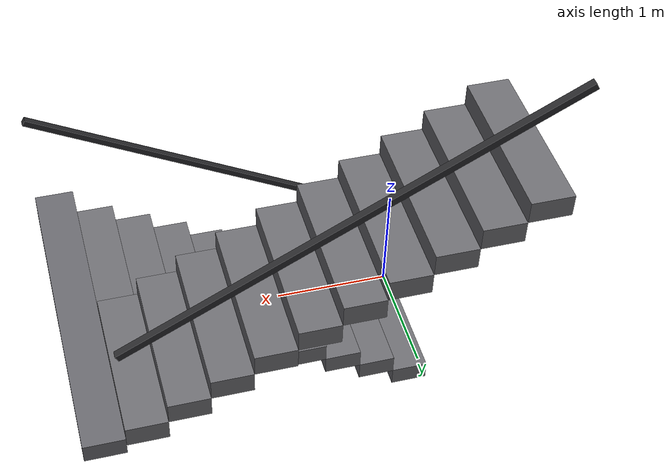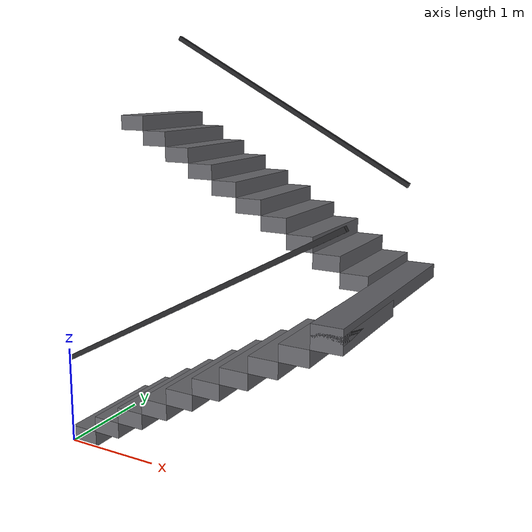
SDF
<?xml version="1.0" ?>
<sdf version="1.6">
  <model name="staircase">
    <static>true</static>

    <!-- ===================== FLIGHT A (steps 1..10, +X, Y 0..1.2) ===================== -->
    <link name="flight_a">
      <!-- Step template repeated; tread 0.30, rise 0.165, top of step n at n*0.165 -->
      <!-- Step 1 -->
      <collision name="a1_col"><pose>0.15 0.6 0.0825 0 0 0</pose><geometry><box><size>0.30 1.2 0.165</size></box></geometry></collision>
      <visual name="a1_vis"><pose>0.15 0.6 0.0825 0 0 0</pose><geometry><box><size>0.30 1.2 0.165</size></box></geometry>
        <material><ambient>0.30 0.30 0.32 1</ambient><diffuse>0.42 0.42 0.44 1</diffuse><specular>0.30 0.30 0.32 1</specular></material></visual>
      <!-- Step 2 -->
      <collision name="a2_col"><pose>0.45 0.6 0.2475 0 0 0</pose><geometry><box><size>0.30 1.2 0.165</size></box></geometry></collision>
      <visual name="a2_vis"><pose>0.45 0.6 0.2475 0 0 0</pose><geometry><box><size>0.30 1.2 0.165</size></box></geometry>
        <material><ambient>0.30 0.30 0.32 1</ambient><diffuse>0.42 0.42 0.44 1</diffuse><specular>0.30 0.30 0.32 1</specular></material></visual>
      <!-- Step 3 -->
      <collision name="a3_col"><pose>0.75 0.6 0.4125 0 0 0</pose><geometry><box><size>0.30 1.2 0.165</size></box></geometry></collision>
      <visual name="a3_vis"><pose>0.75 0.6 0.4125 0 0 0</pose><geometry><box><size>0.30 1.2 0.165</size></box></geometry>
        <material><ambient>0.30 0.30 0.32 1</ambient><diffuse>0.42 0.42 0.44 1</diffuse><specular>0.30 0.30 0.32 1</specular></material></visual>
      <!-- Step 4 -->
      <collision name="a4_col"><pose>1.05 0.6 0.5775 0 0 0</pose><geometry><box><size>0.30 1.2 0.165</size></box></geometry></collision>
      <visual name="a4_vis"><pose>1.05 0.6 0.5775 0 0 0</pose><geometry><box><size>0.30 1.2 0.165</size></box></geometry>
        <material><ambient>0.30 0.30 0.32 1</ambient><diffuse>0.42 0.42 0.44 1</diffuse><specular>0.30 0.30 0.32 1</specular></material></visual>
      <!-- Step 5 -->
      <collision name="a5_col"><pose>1.35 0.6 0.7425 0 0 0</pose><geometry><box><size>0.30 1.2 0.165</size></box></geometry></collision>
      <visual name="a5_vis"><pose>1.35 0.6 0.7425 0 0 0</pose><geometry><box><size>0.30 1.2 0.165</size></box></geometry>
        <material><ambient>0.30 0.30 0.32 1</ambient><diffuse>0.42 0.42 0.44 1</diffuse><specular>0.30 0.30 0.32 1</specular></material></visual>
      <!-- Step 6 -->
      <collision name="a6_col"><pose>1.65 0.6 0.9075 0 0 0</pose><geometry><box><size>0.30 1.2 0.165</size></box></geometry></collision>
      <visual name="a6_vis"><pose>1.65 0.6 0.9075 0 0 0</pose><geometry><box><size>0.30 1.2 0.165</size></box></geometry>
        <material><ambient>0.30 0.30 0.32 1</ambient><diffuse>0.42 0.42 0.44 1</diffuse><specular>0.30 0.30 0.32 1</specular></material></visual>
      <!-- Step 7 -->
      <collision name="a7_col"><pose>1.95 0.6 1.0725 0 0 0</pose><geometry><box><size>0.30 1.2 0.165</size></box></geometry></collision>
      <visual name="a7_vis"><pose>1.95 0.6 1.0725 0 0 0</pose><geometry><box><size>0.30 1.2 0.165</size></box></geometry>
        <material><ambient>0.30 0.30 0.32 1</ambient><diffuse>0.42 0.42 0.44 1</diffuse><specular>0.30 0.30 0.32 1</specular></material></visual>
      <!-- Step 8 -->
      <collision name="a8_col"><pose>2.25 0.6 1.2375 0 0 0</pose><geometry><box><size>0.30 1.2 0.165</size></box></geometry></collision>
      <visual name="a8_vis"><pose>2.25 0.6 1.2375 0 0 0</pose><geometry><box><size>0.30 1.2 0.165</size></box></geometry>
        <material><ambient>0.30 0.30 0.32 1</ambient><diffuse>0.42 0.42 0.44 1</diffuse><specular>0.30 0.30 0.32 1</specular></material></visual>
      <!-- Step 9 -->
      <collision name="a9_col"><pose>2.55 0.6 1.4025 0 0 0</pose><geometry><box><size>0.30 1.2 0.165</size></box></geometry></collision>
      <visual name="a9_vis"><pose>2.55 0.6 1.4025 0 0 0</pose><geometry><box><size>0.30 1.2 0.165</size></box></geometry>
        <material><ambient>0.30 0.30 0.32 1</ambient><diffuse>0.42 0.42 0.44 1</diffuse><specular>0.30 0.30 0.32 1</specular></material></visual>
      <!-- Step 10 -->
      <collision name="a10_col"><pose>2.85 0.6 1.5675 0 0 0</pose><geometry><box><size>0.30 1.2 0.165</size></box></geometry></collision>
      <visual name="a10_vis"><pose>2.85 0.6 1.5675 0 0 0</pose><geometry><box><size>0.30 1.2 0.165</size></box></geometry>
        <material><ambient>0.30 0.30 0.32 1</ambient><diffuse>0.42 0.42 0.44 1</diffuse><specular>0.30 0.30 0.32 1</specular></material></visual>
    </link>

    <!-- ===================== LANDING (at z=1.65, X 2.7..3.0, Y 0..2.5) ===================== -->
    <link name="landing">
      <collision name="landing_col"><pose>2.85 1.25 1.6425 0 0 0</pose><geometry><box><size>0.30 2.5 0.15</size></box></geometry></collision>
      <visual name="landing_vis"><pose>2.85 1.25 1.6425 0 0 0</pose><geometry><box><size>0.30 2.5 0.15</size></box></geometry>
        <material><ambient>0.28 0.28 0.30 1</ambient><diffuse>0.40 0.40 0.42 1</diffuse><specular>0.35 0.35 0.37 1</specular></material></visual>
    </link>

    <!-- ===================== FLIGHT B (steps 11..20, -X, Y 1.3..2.5) ===================== -->
    <link name="flight_b">
      <!-- Step 11 (first above landing 1.65) -->
      <collision name="b11_col"><pose>2.55 1.9 1.7325 0 0 0</pose><geometry><box><size>0.30 1.2 0.165</size></box></geometry></collision>
      <visual name="b11_vis"><pose>2.55 1.9 1.7325 0 0 0</pose><geometry><box><size>0.30 1.2 0.165</size></box></geometry>
        <material><ambient>0.30 0.30 0.32 1</ambient><diffuse>0.42 0.42 0.44 1</diffuse><specular>0.30 0.30 0.32 1</specular></material></visual>
      <collision name="b12_col"><pose>2.25 1.9 1.8975 0 0 0</pose><geometry><box><size>0.30 1.2 0.165</size></box></geometry></collision>
      <visual name="b12_vis"><pose>2.25 1.9 1.8975 0 0 0</pose><geometry><box><size>0.30 1.2 0.165</size></box></geometry>
        <material><ambient>0.30 0.30 0.32 1</ambient><diffuse>0.42 0.42 0.44 1</diffuse><specular>0.30 0.30 0.32 1</specular></material></visual>
      <collision name="b13_col"><pose>1.95 1.9 2.0625 0 0 0</pose><geometry><box><size>0.30 1.2 0.165</size></box></geometry></collision>
      <visual name="b13_vis"><pose>1.95 1.9 2.0625 0 0 0</pose><geometry><box><size>0.30 1.2 0.165</size></box></geometry>
        <material><ambient>0.30 0.30 0.32 1</ambient><diffuse>0.42 0.42 0.44 1</diffuse><specular>0.30 0.30 0.32 1</specular></material></visual>
      <collision name="b14_col"><pose>1.65 1.9 2.2275 0 0 0</pose><geometry><box><size>0.30 1.2 0.165</size></box></geometry></collision>
      <visual name="b14_vis"><pose>1.65 1.9 2.2275 0 0 0</pose><geometry><box><size>0.30 1.2 0.165</size></box></geometry>
        <material><ambient>0.30 0.30 0.32 1</ambient><diffuse>0.42 0.42 0.44 1</diffuse><specular>0.30 0.30 0.32 1</specular></material></visual>
      <collision name="b15_col"><pose>1.35 1.9 2.3925 0 0 0</pose><geometry><box><size>0.30 1.2 0.165</size></box></geometry></collision>
      <visual name="b15_vis"><pose>1.35 1.9 2.3925 0 0 0</pose><geometry><box><size>0.30 1.2 0.165</size></box></geometry>
        <material><ambient>0.30 0.30 0.32 1</ambient><diffuse>0.42 0.42 0.44 1</diffuse><specular>0.30 0.30 0.32 1</specular></material></visual>
      <collision name="b16_col"><pose>1.05 1.9 2.5575 0 0 0</pose><geometry><box><size>0.30 1.2 0.165</size></box></geometry></collision>
      <visual name="b16_vis"><pose>1.05 1.9 2.5575 0 0 0</pose><geometry><box><size>0.30 1.2 0.165</size></box></geometry>
        <material><ambient>0.30 0.30 0.32 1</ambient><diffuse>0.42 0.42 0.44 1</diffuse><specular>0.30 0.30 0.32 1</specular></material></visual>
      <collision name="b17_col"><pose>0.75 1.9 2.7225 0 0 0</pose><geometry><box><size>0.30 1.2 0.165</size></box></geometry></collision>
      <visual name="b17_vis"><pose>0.75 1.9 2.7225 0 0 0</pose><geometry><box><size>0.30 1.2 0.165</size></box></geometry>
        <material><ambient>0.30 0.30 0.32 1</ambient><diffuse>0.42 0.42 0.44 1</diffuse><specular>0.30 0.30 0.32 1</specular></material></visual>
      <collision name="b18_col"><pose>0.45 1.9 2.8875 0 0 0</pose><geometry><box><size>0.30 1.2 0.165</size></box></geometry></collision>
      <visual name="b18_vis"><pose>0.45 1.9 2.8875 0 0 0</pose><geometry><box><size>0.30 1.2 0.165</size></box></geometry>
        <material><ambient>0.30 0.30 0.32 1</ambient><diffuse>0.42 0.42 0.44 1</diffuse><specular>0.30 0.30 0.32 1</specular></material></visual>
      <collision name="b19_col"><pose>0.15 1.9 3.0525 0 0 0</pose><geometry><box><size>0.30 1.2 0.165</size></box></geometry></collision>
      <visual name="b19_vis"><pose>0.15 1.9 3.0525 0 0 0</pose><geometry><box><size>0.30 1.2 0.165</size></box></geometry>
        <material><ambient>0.30 0.30 0.32 1</ambient><diffuse>0.42 0.42 0.44 1</diffuse><specular>0.30 0.30 0.32 1</specular></material></visual>
      <!-- 20 (top, reaches 3.30) -->
      <collision name="b20_col"><pose>-0.15 1.9 3.2175 0 0 0</pose><geometry><box><size>0.30 1.2 0.165</size></box></geometry></collision>
      <visual name="b20_vis"><pose>-0.15 1.9 3.2175 0 0 0</pose><geometry><box><size>0.30 1.2 0.165</size></box></geometry>
        <material><ambient>0.30 0.30 0.32 1</ambient><diffuse>0.42 0.42 0.44 1</diffuse><specular>0.30 0.30 0.32 1</specular></material></visual>
    </link>

    <!-- ===================== HANDRAIL (visual only, both flights outer edge) ===================== -->
    <link name="handrail">
      <!-- Flight A outer rail (Y=0.02), rising: walking line runs (0,0)->(3.0,1.65),
           rail offset +0.9m vertically above the pitch line, centered on the run -->
      <visual name="rail_a_vis"><pose>1.5 0.03 1.725 0 -0.5 0</pose>
        <geometry><box><size>3.4 0.05 0.05</size></box></geometry>
        <material><ambient>0.10 0.10 0.11 1</ambient><diffuse>0.16 0.16 0.17 1</diffuse><specular>0.40 0.40 0.42 1</specular></material></visual>
      <!-- Flight B outer rail (Y=2.48), rising the other way: walking line runs
           (2.7,1.65)->(-0.3,3.30), rail offset +0.9m vertically above the pitch line -->
      <visual name="rail_b_vis"><pose>1.2 2.47 3.375 0 0.5 0</pose>
        <geometry><box><size>3.4 0.05 0.05</size></box></geometry>
        <material><ambient>0.10 0.10 0.11 1</ambient><diffuse>0.16 0.16 0.17 1</diffuse><specular>0.40 0.40 0.42 1</specular></material></visual>
    </link>
  </model>
</sdf>
